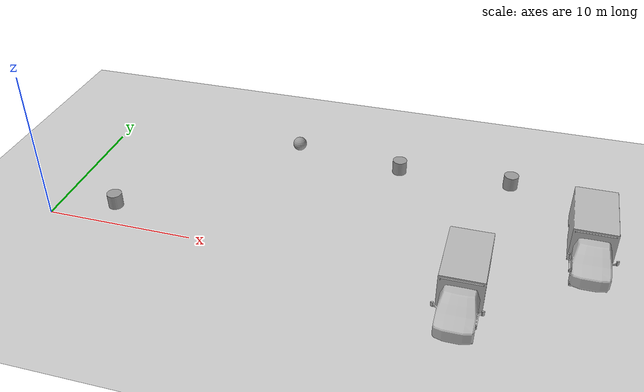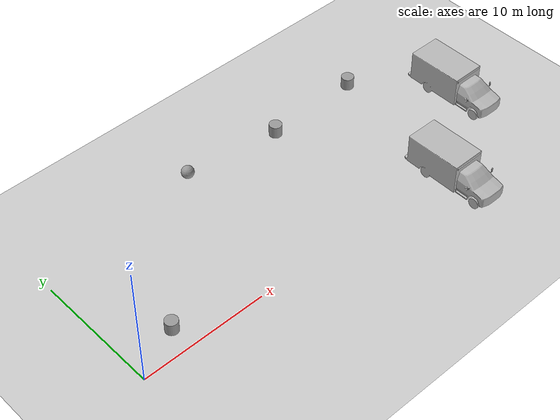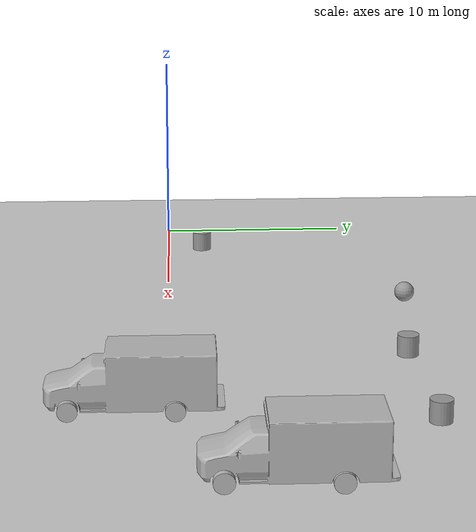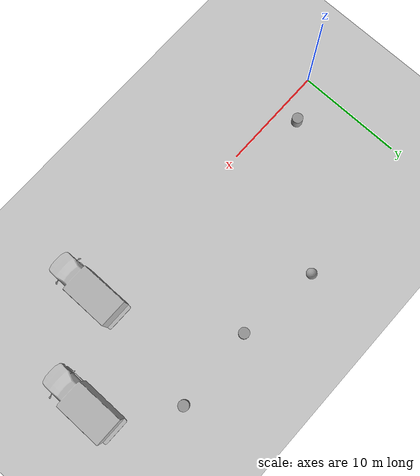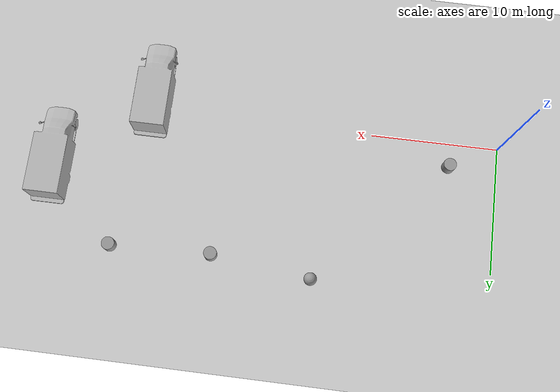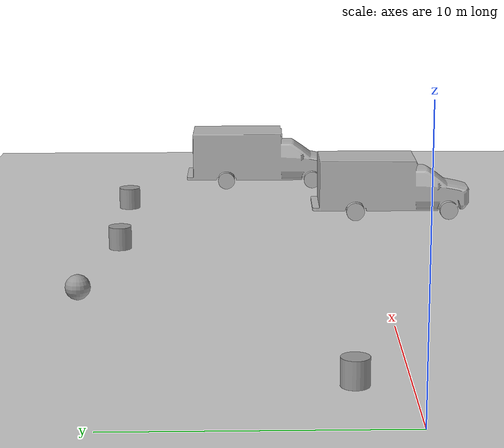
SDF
<sdf version="1.7">
 <world name="default">
  <light name="sun" type="directional">
   <pose>0 0 10 0 -0 0</pose>
   <diffuse>0.8 0.8 0.8 1</diffuse>
   <specular>0.2 0.2 0.2 1</specular>
   <attenuation>
    <range>1000</range>
    <constant>0.9</constant>
    <linear>0.01</linear>
    <quadratic>0.001</quadratic>
   </attenuation>
   <direction>-0.5 0.1 -0.9</direction>
   <spot><inner_angle>0</inner_angle><outer_angle>0</outer_angle><falloff>0</falloff></spot>
  </light>
  <model name="ground_plane">
   <static>1</static>
   <link name="link">
    <collision name="collision">
     <geometry><plane><normal>0 0 1</normal><size>100 100</size></plane></geometry>
     <surface>
      <contact><collide_bitmask>65535</collide_bitmask></contact>
      <friction><ode><mu>100</mu><mu2>50</mu2></ode></friction>
     </surface>
    </collision>
    <visual name="visual">
     <cast_shadows>0</cast_shadows>
     <geometry><plane><normal>0 0 1</normal><size>100 100</size></plane></geometry>
     <material>
      <script><uri>file://media/materials/scripts/gazebo.material</uri><name>Gazebo/Grey</name></script>
     </material>
    </visual>
   </link>
  </model>
  <gravity>0 0 -9.8</gravity>
  <magnetic_field>6e-06 2.3e-05 -4.2e-05</magnetic_field>
  <atmosphere type="adiabatic"/>
  <physics type="ode">
   <max_step_size>0.001</max_step_size>
   <real_time_factor>1</real_time_factor>
   <real_time_update_rate>1000</real_time_update_rate>
  </physics>
  <scene><ambient>0.4 0.4 0.4 1</ambient><background>0.7 0.7 0.7 1</background><shadows>1</shadows></scene>
  <spherical_coordinates>
   <surface_model>EARTH_WGS84</surface_model>
   <latitude_deg>0</latitude_deg>
   <longitude_deg>0</longitude_deg>
   <elevation>0</elevation>
   <heading_deg>0</heading_deg>
  </spherical_coordinates>
  <model name="unit_cylinder">
   <pose>3.81447 1.88868 0.499994 -4e-06 -4e-06 -0</pose>
   <link name="link">
    <inertial>
     <mass>1</mass>
     <inertia><ixx>0.145833</ixx><ixy>0</ixy><ixz>0</ixz><iyy>0.145833</iyy><iyz>0</iyz><izz>0.125</izz></inertia>
    </inertial>
    <collision name="collision">
     <geometry><cylinder><radius>0.5</radius><length>1</length></cylinder></geometry>
    </collision>
    <visual name="visual">
     <geometry><cylinder><radius>0.5</radius><length>1</length></cylinder></geometry>
     <material>
      <script><name>Gazebo/Grey</name><uri>file://media/materials/scripts/gazebo.material</uri></script>
     </material>
    </visual>
   </link>
  </model>
  <model name="ambulance">
   <static>1</static>
   <link name="link">
    <collision name="collision">
     <geometry>
      <mesh><scale>0.0254 0.0254 0.0254</scale><uri>model://ambulance/meshes/ambulance.obj</uri></mesh>
     </geometry>
    </collision>
    <visual name="visual">
     <geometry>
      <mesh><scale>0.0254 0.0254 0.0254</scale><uri>model://ambulance/meshes/ambulance.obj</uri></mesh>
     </geometry>
    </visual>
   </link>
   <pose>34.6293 4.97529 0 0 -0 0</pose>
  </model>
  <model name="unit_sphere">
   <pose>13.6858 12.0435 0.5 0 -0 0</pose>
   <link name="link">
    <inertial>
     <mass>1</mass>
     <inertia><ixx>0.1</ixx><ixy>0</ixy><ixz>0</ixz><iyy>0.1</iyy><iyz>0</iyz><izz>0.1</izz></inertia>
    </inertial>
    <collision name="collision"><geometry><sphere><radius>0.5</radius></sphere></geometry></collision>
    <visual name="visual">
     <geometry><sphere><radius>0.5</radius></sphere></geometry>
     <material>
      <script><name>Gazebo/Grey</name><uri>file://media/materials/scripts/gazebo.material</uri></script>
     </material>
    </visual>
   </link>
  </model>
  <model name="unit_cylinder_0">
   <pose>29.2914 11.294 0.499998 3e-06 -4e-06 0</pose>
   <link name="link">
    <inertial>
     <mass>1</mass>
     <inertia><ixx>0.145833</ixx><ixy>0</ixy><ixz>0</ixz><iyy>0.145833</iyy><iyz>0</iyz><izz>0.125</izz></inertia>
    </inertial>
    <collision name="collision">
     <geometry><cylinder><radius>0.5</radius><length>1</length></cylinder></geometry>
    </collision>
    <visual name="visual">
     <geometry><cylinder><radius>0.5</radius><length>1</length></cylinder></geometry>
     <material>
      <script><name>Gazebo/Grey</name><uri>file://media/materials/scripts/gazebo.material</uri></script>
     </material>
    </visual>
   </link>
  </model>
  <model name="unit_cylinder_1">
   <pose>21.4604 11.0798 0.499993 -3e-06 -4e-06 -0</pose>
   <link name="link">
    <inertial>
     <mass>1</mass>
     <inertia><ixx>0.145833</ixx><ixy>0</ixy><ixz>0</ixz><iyy>0.145833</iyy><iyz>0</iyz><izz>0.125</izz></inertia>
    </inertial>
    <collision name="collision">
     <geometry><cylinder><radius>0.5</radius><length>1</length></cylinder></geometry>
    </collision>
    <visual name="visual">
     <geometry><cylinder><radius>0.5</radius><length>1</length></cylinder></geometry>
     <material>
      <script><name>Gazebo/Grey</name><uri>file://media/materials/scripts/gazebo.material</uri></script>
     </material>
    </visual>
   </link>
  </model>
  <model name="ambulance_0">
   <static>1</static>
   <link name="link">
    <collision name="collision">
     <geometry>
      <mesh><scale>0.0254 0.0254 0.0254</scale><uri>model://ambulance/meshes/ambulance.obj</uri></mesh>
     </geometry>
    </collision>
    <visual name="visual">
     <geometry>
      <mesh><scale>0.0254 0.0254 0.0254</scale><uri>model://ambulance/meshes/ambulance.obj</uri></mesh>
     </geometry>
    </visual>
   </link>
   <pose>27.5683 -1.28827 0 0 -0 0</pose>
  </model>
 </world>
</sdf>
